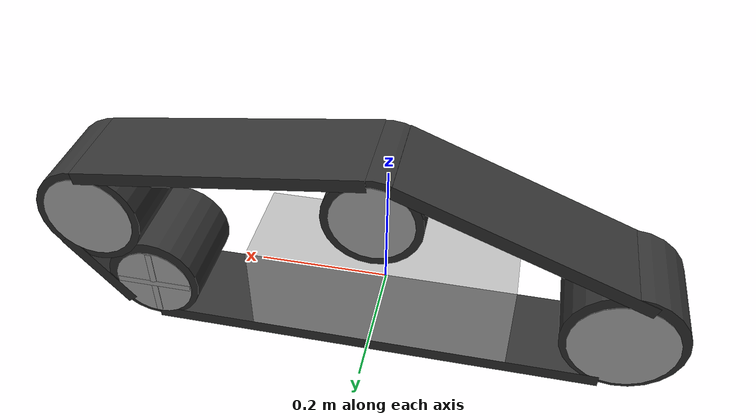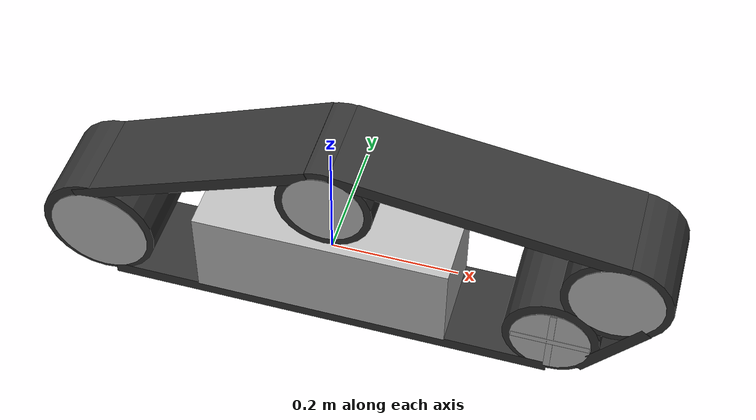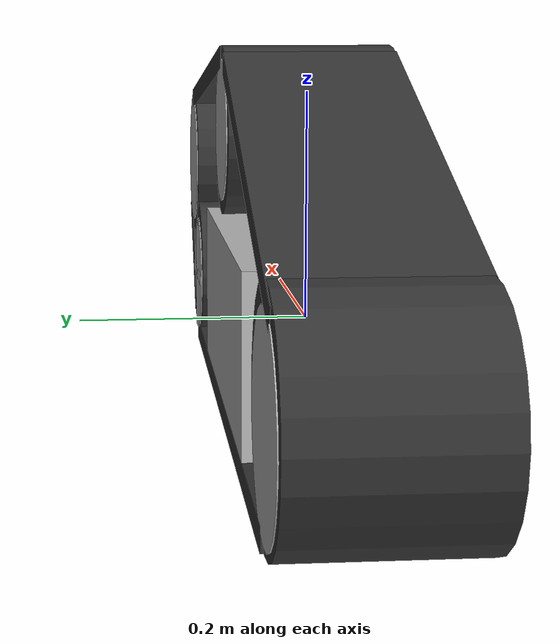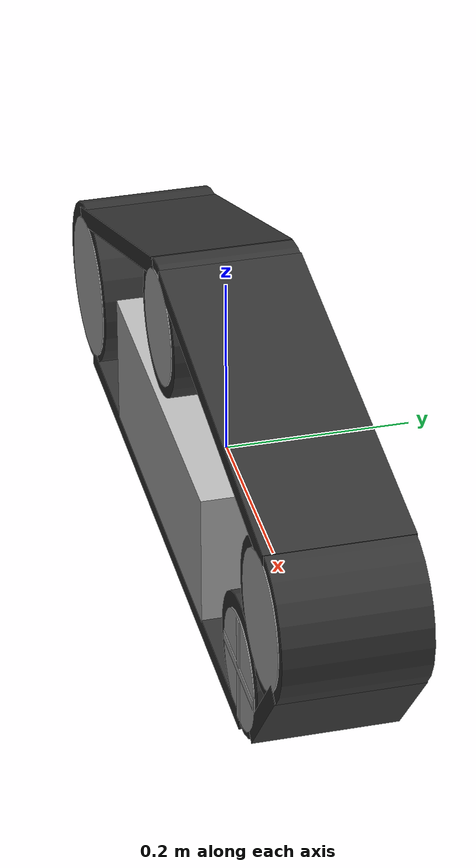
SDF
<sdf version='1.6'>
    <model name='example_track'>
        <link name='body'>
            <pose frame=''>0 0 0 0 0 0</pose>
            <inertial>
                <pose frame=''>0 0 0 0 0 0</pose>
                <mass>1.2</mass>
                <inertia>
                    <ixx>0.0296633</ixx>
                    <ixy>0</ixy>
                    <ixz>0</ixz>
                    <iyy>0.0452233</iyy>
                    <iyz>0</iyz>
                    <izz>0.06758</izz>
                </inertia>
            </inertial>
            <!-- body box -->
            <collision name='body_collision'>
                <pose frame=''>0 0 0 0 0 0</pose>
                <geometry>
                    <box>
                        <size>0.4 0.151 0.15</size>
                    </box>
                </geometry>
            </collision>

            <visual name='body_visual'>
                <pose frame=''>0 0 0 0 0 0</pose>
                <geometry>
                    <box>
                        <size>0.4 0.150 0.15</size>
                    </box>
                </geometry>
            </visual>

            <!-- body cylinder: back-->
            <collision name='body_fixed_joint_lump__idler_collision_1'>
                <pose frame=''>-0.36 0 0 1.5708 0 0</pose>
                <geometry>
                    <cylinder>
                        <length>0.15</length>
                        <radius>0.080</radius>
                    </cylinder>
                </geometry>
            </collision>

            <visual name='body_fixed_joint_lump__idler_visual_1'>
                <pose frame=''>-0.36 0 0 1.5708 0 0</pose>
                <geometry>
                    <cylinder>
                        <length>0.15</length>
                        <radius>0.080</radius>
                    </cylinder>
                </geometry>
            </visual>

            <!-- body cylinder: front -->
            <collision name='body_fixed_joint_lump__idler_collision_2'>
                <pose frame=''>0.445 0 0.102 1.5708 0 0</pose>
                <geometry>
                    <cylinder>
                        <length>0.150</length>
                        <radius>0.070</radius>
                    </cylinder>
                </geometry>
            </collision>

            <visual name='body_fixed_joint_lump__idler_visual_2'>
                <pose frame=''>0.445 0 0.102 1.5708 0 0</pose>
                <geometry>
                    <cylinder>
                        <length>0.150</length>
                        <radius>0.070</radius>
                    </cylinder>
                </geometry>
            </visual>

            <!-- body cylinder: top -->
            <collision name='body_fixed_joint_lump__idler_collision_3'>
                <pose frame=''>0.00953 0 0.16618 1.5708 0 0</pose>
                <geometry>
                    <cylinder>
                        <length>0.15</length>
                        <radius>0.062</radius>
                    </cylinder>
                </geometry>
            </collision>

            <visual name='body_fixed_joint_lump__idler_visual_3'>
                <pose frame=''>0.00953 0 0.16618 1.5708 0 0</pose>
                <geometry>
                    <cylinder>
                        <length>0.150</length>
                        <radius>0.062</radius>
                    </cylinder>
                </geometry>
            </visual>
        </link>

        <!-- sprocket cylinder: main -->
        <link name='sprocket'>
            <pose frame=''>0.36 0 -0.018 0 -0 0</pose>
            <inertial>
                <pose frame=''>0 0 0 0 0 0</pose>
                <mass>0.2</mass>
                <inertia>
                    <ixx>0.004655</ixx>
                    <ixy>0</ixy>
                    <ixz>0</ixz>
                    <iyy>0.00064</iyy>
                    <iyz>0</iyz>
                    <izz>0.004655</izz>
                </inertia>
            </inertial>
            <collision name='sprocket_collision'>
                <pose frame=''>0 0 0 1.5708 0 0</pose>
                <geometry>
                    <cylinder>
                        <length>0.150</length>
                        <radius>0.062</radius>
                    </cylinder>
                </geometry>
            </collision>
            <visual name='sprocket_visual'>
                <pose frame=''>0 0 0 1.5708 0 0</pose>
                <geometry>
                    <cylinder>
                        <length>0.150</length>
                        <radius>0.062</radius>
                    </cylinder>
                </geometry>
            </visual>
            <visual name='sprocket_visual_1'>
                <pose frame=''>0 0 0 0 -0 0</pose>
                <geometry>
                    <box>
                        <size>0.01 0.152 0.12</size>
                    </box>
                </geometry>
            </visual>
            <visual name='sprocket_visual_2'>
                <pose frame=''>0 0 0 0 -0 0</pose>
                <geometry>
                    <box>
                        <size>0.12 0.152 0.01</size>
                    </box>
                </geometry>
            </visual>
        </link>
        <joint name='sprocket_axle' type='revolute'>
            <child>sprocket</child>
            <parent>body</parent>
            <axis>
                <xyz>0 1 0</xyz>
                <limit>
                    <lower>-1e+16</lower>
                    <upper>1e+16</upper>
                </limit>
                <dynamics>
                    <spring_reference>0</spring_reference>
                    <spring_stiffness>0</spring_stiffness>
                </dynamics>
                <use_parent_model_frame>0</use_parent_model_frame>
            </axis>
        </joint>

        <!-- linear link0: top back -->
        <link name='track_straight_segment_link0'>
            <pose frame=''>-0.39396 0 0.0855 0 -0.37821 0</pose>
            <inertial>
                <pose frame=''>0 0 0 0 0 0</pose>
                <mass>0.1</mass>
                <inertia>
                    <ixx>0.00219354</ixx>
                    <ixy>0</ixy>
                    <ixz>0</ixz>
                    <iyy>0.00419354</iyy>
                    <iyz>0</iyz>
                    <izz>0.00616667</izz>
                </inertia>
            </inertial>
            <collision name='collision'>
                <pose frame=''>0.202385 0 -0.01 0 0 0</pose> <!-- half width, half height-->
                <geometry>
                    <box>
                        <size>0.40477 0.15 0.02</size>
                    </box>
                </geometry>
                <surface>
                    <friction>
                        <ode>
                            <mu>0.5</mu>
                            <mu2>0.5</mu2>
                        </ode>
                    </friction>
                    <contact>
                        <ode>
                            <min_depth>0.01</min_depth>
                        </ode>
                    </contact>
                </surface>
            </collision>
            <visual name='visual'>
                <pose frame=''>0.202385 0 -0.01 0 0 0</pose>
                <geometry>
                    <box>
                        <size>0.40477 0.15 0.02</size>
                    </box>
                </geometry>
                <material>
                    <ambient>0.1 0.1 0.3 1</ambient>
                    <diffuse>0.2 0.2 0.2 1</diffuse>
                    <specular>0 0 0 1</specular>
                    <emissive>0 0 0 1</emissive>
                </material>
            </visual>
        </link>

        <joint name='track_straight_segment_joint0' type='prismatic'>
            <child>track_straight_segment_link0</child>
            <parent>body</parent>
            <axis>
                <xyz>1 0 0</xyz>
                <use_parent_model_frame>0</use_parent_model_frame>
                <limit>
                    <lower>-1e+16</lower>
                    <upper>1e+16</upper>
                </limit>
            </axis>
            <physics>
                <ode>
                    <implicit_spring_damper>1</implicit_spring_damper>
                </ode>
            </physics>
        </joint>

        <!-- linear link1: top front -->
        <link name='track_straight_segment_link1'>
            <pose frame=''>0.01898 0 0.23955 0 0.128107 0</pose>
            <inertial>
                <pose frame=''>0.22005 0 -0.01 0 0 0</pose>
                <mass>0.1</mass>
                <inertia>
                    <ixx>0.00219354</ixx>
                    <ixy>0</ixy>
                    <ixz>0</ixz>
                    <iyy>0.00419354</iyy>
                    <iyz>0</iyz>
                    <izz>0.00616667</izz>
                </inertia>
            </inertial>
            <collision name='collision'>
                <pose frame=''>0.22005 0 -0.01 0 0 0</pose> <!-- half width, half height-->
                <geometry>
                    <box>
                        <size>0.44010 0.15 0.02</size>
                    </box>
                </geometry>
                <surface>
                    <friction>
                        <ode>
                            <mu>0.5</mu>
                            <mu2>0.5</mu2>
                        </ode>
                    </friction>
                    <contact>
                        <ode>
                            <min_depth>0.01</min_depth>
                        </ode>
                    </contact>
                </surface>
            </collision>
            <visual name='visual'>
                <pose frame=''>0.22005 0 -0.01 0 0 0</pose>
                <geometry>
                    <box>
                        <size>0.44010 0.15 0.02</size>
                    </box>
                </geometry>
                <material>
                    <ambient>0.1 0.1 0.3 1</ambient>
                    <diffuse>0.2 0.2 0.2 1</diffuse>
                    <specular>0 0 0 1</specular>
                    <emissive>0 0 0 1</emissive>
                </material>
            </visual>
        </link>

        <joint name='track_straight_segment_joint1' type='prismatic'>
            <child>track_straight_segment_link1</child>
            <parent>body</parent>
            <axis>
                <xyz>1 0 0</xyz>
                <use_parent_model_frame>0</use_parent_model_frame>
                <limit>
                    <lower>-1e+16</lower>
                    <upper>1e+16</upper>
                </limit>
            </axis>
            <physics>
                <ode>
                    <implicit_spring_damper>1</implicit_spring_damper>
                </ode>
            </physics>
        </joint>

        <!-- linear link2: bottom front -->
        <link name='track_straight_segment_link2'>
            <pose frame=''>0.50298 0 0.04402 3.14159 0.900415 3.14159</pose>
            <inertial>
                <pose frame=''>0.072844 0 -0.01 0 -0 0</pose>
                <mass>0.1</mass>
                <inertia>
                    <ixx>0.00219354</ixx>
                    <ixy>0</ixy>
                    <ixz>0</ixz>
                    <iyy>0.00419354</iyy>
                    <iyz>0</iyz>
                    <izz>0.00616667</izz>
                </inertia>
            </inertial>
            <collision name='collision'>
                <pose frame=''> 0.072844 0 -0.01 0 0 0 </pose>
                <geometry>
                    <box>
                        <size>0.145688 0.15 0.02</size>
                    </box>
                </geometry>
                <surface>
                    <friction>
                        <ode>
                            <mu>0.5</mu>
                            <mu2>0.5</mu2>
                        </ode>
                    </friction>
                    <contact>
                        <ode>
                            <min_depth>0.01</min_depth>
                        </ode>
                    </contact>
                </surface>
            </collision>
            <visual name='visual'>
                <pose frame=''> 0.072844 0 -0.01 0 0 0 </pose>
                <geometry>
                    <box>
                        <size>0.145688 0.15 0.02</size>
                    </box>
                </geometry>
                <material>
                    <ambient>0.1 0.1 0.3 1</ambient>
                    <diffuse>0.2 0.2 0.2 1</diffuse>
                    <specular>0 0 0 1</specular>
                    <emissive>0 0 0 1</emissive>
                </material>
            </visual>
        </link>

        <joint name='track_straight_segment_joint2' type='prismatic'>
            <child>track_straight_segment_link2</child>
            <parent>body</parent>
            <axis>
                <xyz>1 0 0</xyz>
                <use_parent_model_frame>0</use_parent_model_frame>
                <limit>
                    <lower>-1e+16</lower>
                    <upper>1e+16</upper>
                </limit>
            </axis>
            <physics>
                <ode>
                    <implicit_spring_damper>1</implicit_spring_damper>
                </ode>
            </physics>
        </joint>

        <!-- linear link3: bottom -->
        <link name='track_straight_segment_link3'>
            <pose frame=''>0.36 0 -0.092 3.14159 -0 3.14159</pose>
            <inertial>
                <pose frame=''>0.35 0 -0.01 0 -0 0</pose>
                <mass>0.1</mass>
                <inertia>
                    <ixx>0.00219354</ixx>
                    <ixy>0</ixy>
                    <ixz>0</ixz>
                    <iyy>0.00419354</iyy>
                    <iyz>0</iyz>
                    <izz>0.00616667</izz>
                </inertia>
            </inertial>
            <collision name='collision'>
                <pose frame=''>0.35 0 -0.01 0 -0 0</pose>
                <geometry>
                    <box>
                        <size>0.7 0.15 0.02</size>
                    </box>
                </geometry>
                <surface>
                    <friction>
                        <ode>
                            <mu>0.5</mu>
                            <mu2>0.5</mu2>
                        </ode>
                    </friction>
                    <contact>
                        <ode>
                            <min_depth>0.01</min_depth>
                        </ode>
                    </contact>
                </surface>
            </collision>
            <visual name='visual'>
                <pose frame=''>0.35 0 -0.01 0 0 0</pose>
                <geometry>
                    <box>
                        <size>0.7 0.15 0.02</size>
                    </box>
                </geometry>
                <material>
                    <ambient>0.1 0.1 0.3 1</ambient>
                    <diffuse>0.2 0.2 0.2 1</diffuse>
                    <specular>0 0 0 1</specular>
                    <emissive>0 0 0 1</emissive>
                </material>
            </visual>
        </link>

        <joint name='track_straight_segment_joint3' type='prismatic'>
            <child>track_straight_segment_link3</child>
            <parent>body</parent>
            <axis>
                <xyz>1 0 0</xyz>
                <use_parent_model_frame>0</use_parent_model_frame>
                <limit>
                    <lower>-1e+16</lower>
                    <upper>1e+16</upper>
                </limit>
            </axis>
            <physics>
                <ode>
                    <implicit_spring_damper>1</implicit_spring_damper>
                </ode>
            </physics>
        </joint>

        <!-- arc link0: main cylinder -->
        <link name='track_arc_segment_link0'>
            <!-- 提高底下两个轮子的高度z+=0.006，避免链条转向造成颠簸 -->
            <pose frame=''>0.36 0 0.062 0 0 0</pose>
            <inertial>
                <pose frame=''>0 0 -0.074 1.5708 -0 0</pose>
                <mass>0.1</mass>
                <inertia>
                    <ixx>0.00241396</ixx>
                    <ixy>0</ixy>
                    <ixz>0</ixz>
                    <iyy>0.00241396</iyy>
                    <iyz>0</iyz>
                    <izz>0.00066125</izz>
                </inertia>
            </inertial>
            <collision name='collision'>
                <pose frame=''>0 0 -0.074 1.5708 0 0</pose>
                <geometry>
                    <cylinder>
                        <length>0.148</length>
                        <radius>0.074</radius>
                    </cylinder>
                </geometry>
                <surface>
                    <friction>
                        <ode>
                            <mu>0.5</mu>
                            <mu2>0.5</mu2>
                        </ode>
                    </friction>
                    <contact>
                        <ode>
                            <min_depth>0.01</min_depth>
                        </ode>
                    </contact>
                </surface>
            </collision>
            <visual name='visual'>
                <pose frame=''>0 0 -0.074 1.5708 -0 0</pose>
                <geometry>
                    <cylinder>
                        <length>0.148</length>
                        <radius>0.074</radius>
                    </cylinder>
                </geometry>
                <material>
                    <ambient>0.1 0.1 0.3 1</ambient>
                    <diffuse>0.2 0.2 0.2 1</diffuse>
                    <specular>0 0 0 1</specular>
                    <emissive>0 0 0 1</emissive>
                </material>
            </visual>
        </link>

        <joint name='track_arc_segment_joint0' type='revolute'>
            <child>track_arc_segment_link0</child>
            <parent>body</parent>
            <pose frame=''>0 0 -0.074 0 -0 0</pose> <!-- minus radius -->
            <axis>
                <xyz>0 1 0</xyz>
                <use_parent_model_frame>0</use_parent_model_frame>
                <limit>
                    <lower>-1e+16</lower>
                    <upper>1e+16</upper>
                </limit>
            </axis>
            <physics>
                <ode>
                    <implicit_spring_damper>1</implicit_spring_damper>
                </ode>
            </physics>
        </joint>

        <!-- arc link1: back cylinder -->
        <link name='track_arc_segment_link1'>
            <!-- 提高底下两个轮子的高度z+=0.006，避免链条转向造成颠簸 -->
            <pose frame=''>-0.36 0 -0.086 3.14159 -0 3.14159</pose>
            <inertial>
                <pose frame=''>0 0 -0.092 1.5708 -0 0</pose>
                <mass>0.1</mass>
                <inertia>
                    <ixx>0.00241396</ixx>
                    <ixy>0</ixy>
                    <ixz>0</ixz>
                    <iyy>0.00241396</iyy>
                    <iyz>0</iyz>
                    <izz>0.00066125</izz>
                </inertia>
            </inertial>
            <collision name='collision'>
                <pose frame=''>0 0 -0.092 1.5708 -0 0</pose>
                <geometry>
                    <cylinder>
                        <length>0.148</length>
                        <radius>0.092</radius>
                    </cylinder>
                </geometry>
                <surface>
                    <friction>
                        <ode>
                            <mu>0.5</mu>
                            <mu2>0.5</mu2>
                        </ode>
                    </friction>
                    <contact>
                        <ode>
                            <min_depth>0.01</min_depth>
                        </ode>
                    </contact>
                </surface>
            </collision>
            <visual name='visual'>
                <pose frame=''>0 0 -0.092 1.5708 -0 0</pose>
                <geometry>
                    <cylinder>
                        <length>0.148</length>
                        <radius>0.092</radius>
                    </cylinder>
                </geometry>
                <material>
                    <ambient>0.1 0.1 0.3 1</ambient>
                    <diffuse>0.2 0.2 0.2 1</diffuse>
                    <specular>0 0 0 1</specular>
                    <emissive>0 0 0 1</emissive>
                </material>
            </visual>
        </link>

        <joint name='track_arc_segment_joint1' type='revolute'>
            <child>track_arc_segment_link1</child>
            <parent>body</parent>
            <pose frame=''>0 0 -0.092 0 -0 0</pose>
            <axis>
                <xyz>0 1 0</xyz>
                <use_parent_model_frame>0</use_parent_model_frame>
                <limit>
                    <lower>-1e+16</lower>
                    <upper>1e+16</upper>
                </limit>
            </axis>
            <physics>
                <ode>
                    <implicit_spring_damper>1</implicit_spring_damper>
                </ode>
            </physics>
        </joint>

        <!-- arc link2: front cylinder -->
        <link name='track_arc_segment_link2'>
            <pose frame=''>0.445 0 0.184 0 0 0</pose>
            <inertial>
                <pose frame=''>0 0 -0.082 1.5708 -0 0</pose>
                <mass>0.1</mass>
                <inertia>
                    <ixx>0.00241396</ixx>
                    <ixy>0</ixy>
                    <ixz>0</ixz>
                    <iyy>0.00241396</iyy>
                    <iyz>0</iyz>
                    <izz>0.00066125</izz>
                </inertia>
            </inertial>
            <collision name='collision'>
                <pose frame=''>0 0 -0.082 1.5708 0 0</pose>
                <geometry>
                    <cylinder>
                        <length>0.148</length>
                        <radius>0.082</radius>
                    </cylinder>
                </geometry>
                <surface>
                    <friction>
                        <ode>
                            <mu>0.5</mu>
                            <mu2>0.5</mu2>
                        </ode>
                    </friction>
                    <contact>
                        <ode>
                            <min_depth>0.01</min_depth>
                        </ode>
                    </contact>
                </surface>
            </collision>
            <visual name='visual'>
                <pose frame=''>0 0 -0.082 1.5708 -0 0</pose>
                <geometry>
                    <cylinder>
                        <length>0.148</length>
                        <radius>0.082</radius>
                    </cylinder>
                </geometry>
                <material>
                    <ambient>0.1 0.1 0.3 1</ambient>
                    <diffuse>0.2 0.2 0.2 1</diffuse>
                    <specular>0 0 0 1</specular>
                    <emissive>0 0 0 1</emissive>
                </material>
            </visual>
        </link>

        <joint name='track_arc_segment_joint2' type='revolute'>
            <child>track_arc_segment_link2</child>
            <parent>body</parent>
            <pose frame=''>0 0 -0.082 0 -0 0</pose> <!-- minus radius -->
            <axis>
                <xyz>0 1 0</xyz>
                <use_parent_model_frame>0</use_parent_model_frame>
                <limit>
                    <lower>-1e+16</lower>
                    <upper>1e+16</upper>
                </limit>
            </axis>
            <physics>
                <ode>
                    <implicit_spring_damper>1</implicit_spring_damper>
                </ode>
            </physics>
        </joint>

        <!-- arc link3: top cylinder -->
        <link name='track_arc_segment_link3'>
            <pose frame=''>0.00953 0 0.24018 0 0 0</pose>
            <inertial>
                <pose frame=''>0 0 -0.074 1.5708 -0 0</pose>
                <mass>0.1</mass>
                <inertia>
                    <ixx>0.00241396</ixx>
                    <ixy>0</ixy>
                    <ixz>0</ixz>
                    <iyy>0.00241396</iyy>
                    <iyz>0</iyz>
                    <izz>0.00066125</izz>
                </inertia>
            </inertial>
            <collision name='collision'>
                <pose frame=''>0 0 -0.074 1.5708 0 0</pose>
                <geometry>
                    <cylinder>
                        <length>0.148</length>
                        <radius>0.074</radius>
                    </cylinder>
                </geometry>
                <surface>
                    <friction>
                        <ode>
                            <mu>0.5</mu>
                            <mu2>0.5</mu2>
                        </ode>
                    </friction>
                    <contact>
                        <ode>
                            <min_depth>0.01</min_depth>
                        </ode>
                    </contact>
                </surface>
            </collision>
            <visual name='visual'>
                <pose frame=''>0 0 -0.074 1.5708 0 0</pose>
                <geometry>
                    <cylinder>
                        <length>0.148</length>
                        <radius>0.074</radius>
                    </cylinder>
                </geometry>
                <material>
                    <ambient>0.1 0.1 0.3 1</ambient>
                    <diffuse>0.2 0.2 0.2 1</diffuse>
                    <specular>0 0 0 1</specular>
                    <emissive>0 0 0 1</emissive>
                </material>
            </visual>
        </link>

        <joint name='track_arc_segment_joint3' type='revolute'>
            <child>track_arc_segment_link3</child>
            <parent>body</parent>
            <pose frame=''>0 0 -0.074 0 -0 0</pose> <!-- minus radius -->
            <axis>
                <xyz>0 1 0</xyz>
                <use_parent_model_frame>0</use_parent_model_frame>
                <limit>
                    <lower>-1e+16</lower>
                    <upper>1e+16</upper>
                </limit>
            </axis>
            <physics>
                <ode>
                    <implicit_spring_damper>1</implicit_spring_damper>
                </ode>
            </physics>
        </joint>

        <plugin name='track' filename='libContinuousTrack.so'>
            <sprocket>
                <joint>sprocket_axle</joint>
                <pitch_diameter>0.24</pitch_diameter>
            </sprocket>

            <trajectory>
                <!-- linear link0: top back -->
                <segment>
                    <joint>track_straight_segment_joint0</joint>
                    <end_position>0.42391</end_position>
                </segment>
                <!-- arc link3: top cylinder -->
                <segment>
                    <joint>track_arc_segment_joint3</joint>
                    <end_position>6.283</end_position>
                </segment>
                <!-- linear link1: top front -->
                <segment>
                    <joint>track_straight_segment_joint1</joint>
                    <end_position>0.45924</end_position>
                </segment>
                <!-- arc link2: front cylinder -->
                <segment>
                    <joint>track_arc_segment_joint2</joint>
                    <end_position>6.283</end_position>
                </segment>
                <!-- linear link2: bottom front -->
                <segment>
                    <joint>track_straight_segment_joint2</joint>
                    <end_position>0.14592</end_position>
                </segment>
                <!-- arc link0: main cylinder -->
                <segment>
                    <joint>track_arc_segment_joint0</joint>
                    <end_position>6.283</end_position>
                </segment>
                <!-- linear link3: bottom -->
                <segment>
                    <joint>track_straight_segment_joint3</joint>
                    <end_position>0.7</end_position>
                </segment>
                <!-- arc link1: back cylinder -->
                <segment>
                    <joint>track_arc_segment_joint1</joint>
                    <end_position>6.283</end_position>
                </segment>

            </trajectory>

            <pattern>
                <elements_per_round>50</elements_per_round>
                <element>
                    <collision name='collision'>
                        <pose>0 0 0 0 0 0</pose>
                        <geometry>
                            <box>
                                <size>0.025 0.15 0.025 </size>
                            </box>
                        </geometry>
                        <surface>
                            <friction>
                                <ode>
                                    <mu>0.5</mu>
                                    <mu2>0.5</mu2>
                                </ode>
                            </friction>
                            <contact>
                                <ode>
                                    <min_depth>0.01</min_depth>
                                </ode>
                            </contact>
                        </surface>
                    </collision>
                    <visual name='visual'>
                        <pose>0 0 0 0 0 0</pose>
                        <geometry>
                            <box>
                                <size>0.025 0.15 0.025 </size>
                            </box>
                        </geometry>
                        <material>
                            <ambient>0.1 0.1 0.3 1</ambient>
                            <diffuse>0.2 0.2 0.2 1</diffuse>
                            <specular>0 0 0 1</specular>
                            <emissive>0 0 0 1</emissive>
                        </material>
                    </visual>
                </element>
            </pattern>
        </plugin>
        <static>0</static>
        <plugin name='gazebo_ros_control' filename='libgazebo_ros_control.so'>
            <robotSimType>gazebo_ros_control/DefaultRobotHWSim</robotSimType>
            <legacyModeNS>0</legacyModeNS>
        </plugin>
    </model>
</sdf>
